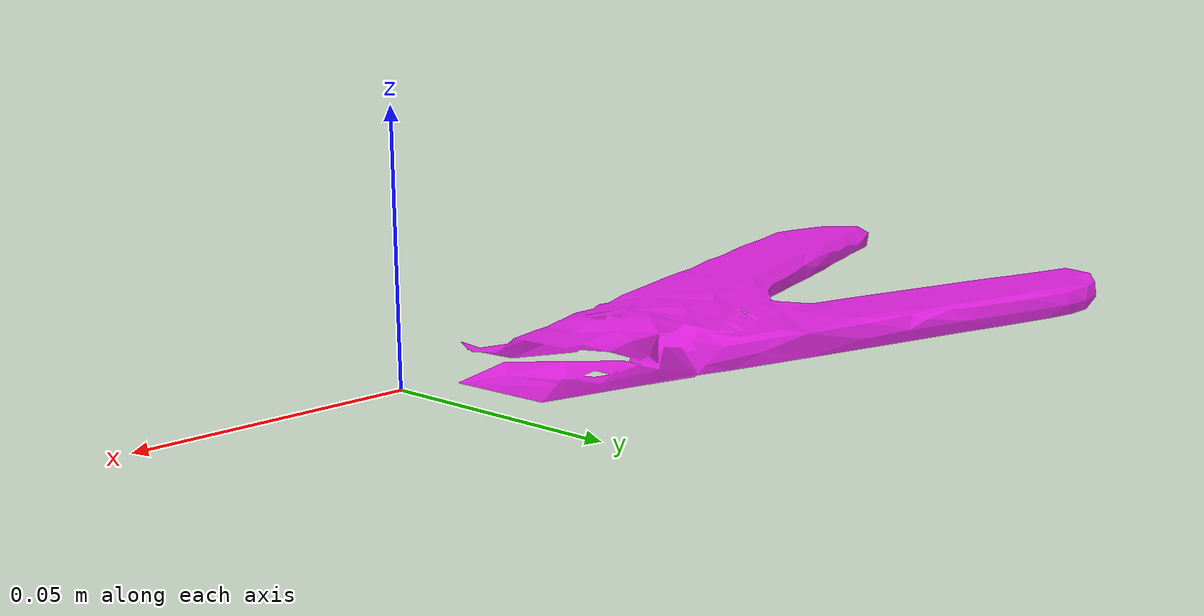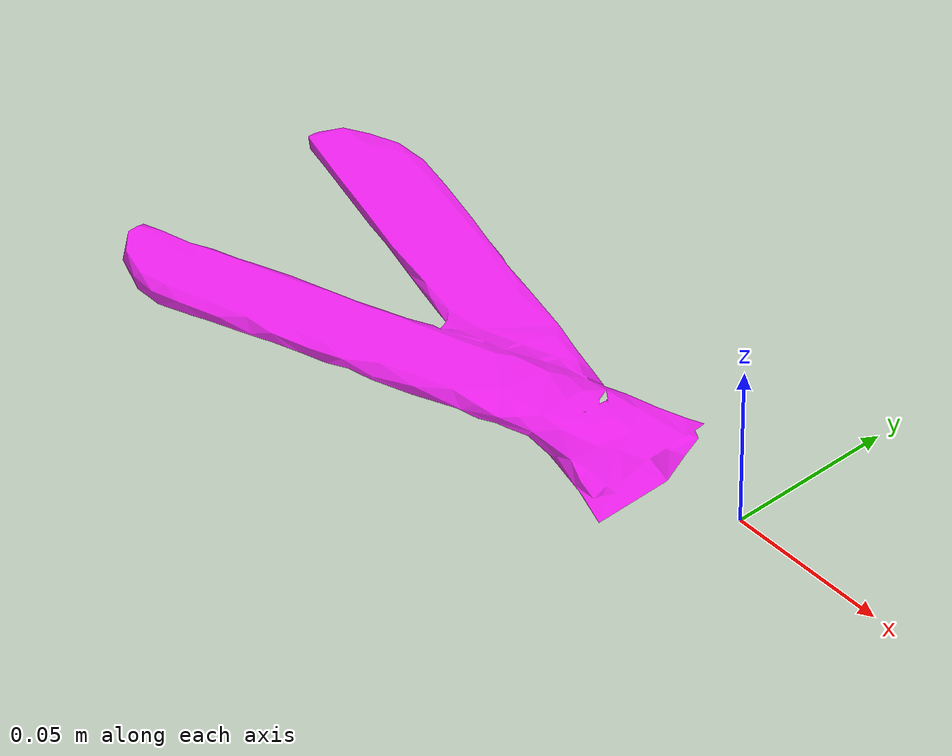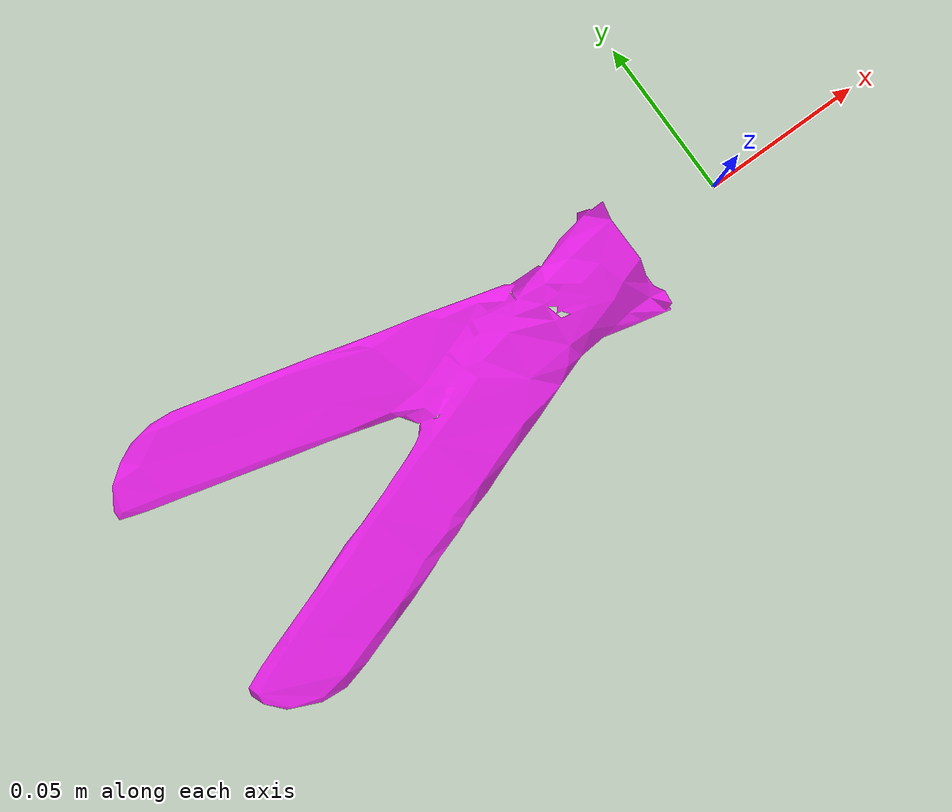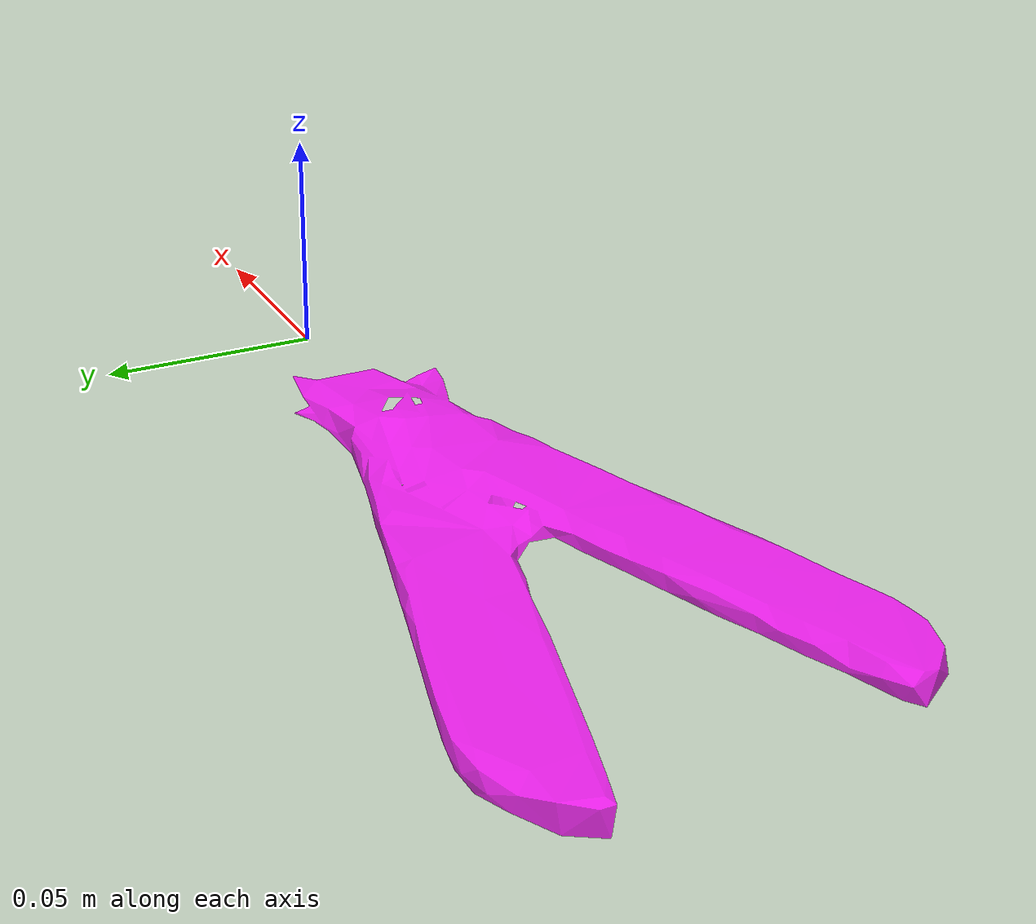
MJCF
<mujoco model="bottom_watertight_tiny">
  <default>
    <default group="2" type="mesh" contype="0" conaffinity="0">
      <geom group="2" type="mesh" contype="0" conaffinity="0"/>
    </default>
    <default group="3" type="mesh">
      <geom group="3" type="mesh"/>
    </default>
  </default>
  <asset>
    <mesh file="bottom_watertight_tiny.obj"/>
    <mesh file="bottom_watertight_tiny_collision_0.obj"/>
    <mesh file="bottom_watertight_tiny_collision_1.obj"/>
    <mesh file="bottom_watertight_tiny_collision_2.obj"/>
    <mesh file="bottom_watertight_tiny_collision_3.obj"/>
    <mesh file="bottom_watertight_tiny_collision_4.obj"/>
    <mesh file="bottom_watertight_tiny_collision_5.obj"/>
    <mesh file="bottom_watertight_tiny_collision_6.obj"/>
    <mesh file="bottom_watertight_tiny_collision_7.obj"/>
    <mesh file="bottom_watertight_tiny_collision_8.obj"/>
    <mesh file="bottom_watertight_tiny_collision_9.obj"/>
    <mesh file="bottom_watertight_tiny_collision_10.obj"/>
    <mesh file="bottom_watertight_tiny_collision_11.obj"/>
    <mesh file="bottom_watertight_tiny_collision_12.obj"/>
    <mesh file="bottom_watertight_tiny_collision_13.obj"/>
    <mesh file="bottom_watertight_tiny_collision_14.obj"/>
  </asset>
  <worldbody>
    <body name="bottom_watertight_tiny">
      <freejoint/>
      <geom mesh="bottom_watertight_tiny" group="2" type="mesh" rgba="1 0 1 0.8" contype="0" conaffinity="0"/>
      <geom mesh="bottom_watertight_tiny_collision_0" rgba="0.5272290096863181 0.49594848526288005 0.9428245246786853 1" group="3" type="mesh"/>
      <geom mesh="bottom_watertight_tiny_collision_1" rgba="0.30865744844416676 0.8914641683494989 0.914047764849407 1" group="3" type="mesh"/>
      <geom mesh="bottom_watertight_tiny_collision_2" rgba="0.14732138102712922 0.6474224101818601 0.13386764938532236 1" group="3" type="mesh"/>
      <geom mesh="bottom_watertight_tiny_collision_3" rgba="0.6592470733483282 0.16629687952200067 0.5690621131834793 1" group="3" type="mesh"/>
      <geom mesh="bottom_watertight_tiny_collision_4" rgba="0.14480078446289557 0.8995111724770833 0.9431585223219869 1" group="3" type="mesh"/>
      <geom mesh="bottom_watertight_tiny_collision_5" rgba="0.5878952822229575 0.3557181963138979 0.1259542522784528 1" group="3" type="mesh"/>
      <geom mesh="bottom_watertight_tiny_collision_6" rgba="0.8498374278851542 0.2661548872660595 0.7546920221979878 1" group="3" type="mesh"/>
      <geom mesh="bottom_watertight_tiny_collision_7" rgba="0.8979028825431346 0.17918422115483412 0.5641609217662489 1" group="3" type="mesh"/>
      <geom mesh="bottom_watertight_tiny_collision_8" rgba="0.44153167081844424 0.087619962802711 0.5402610693645598 1" group="3" type="mesh"/>
      <geom mesh="bottom_watertight_tiny_collision_9" rgba="0.20291328224725513 0.2112314162490182 0.6948945373852735 1" group="3" type="mesh"/>
      <geom mesh="bottom_watertight_tiny_collision_10" rgba="0.5823920338291118 0.13200057629655715 0.059853627927714426 1" group="3" type="mesh"/>
      <geom mesh="bottom_watertight_tiny_collision_11" rgba="0.019924991814070148 0.13531161643418876 0.2788826443085729 1" group="3" type="mesh"/>
      <geom mesh="bottom_watertight_tiny_collision_12" rgba="0.2989854446943605 0.5854789035181921 0.3566891030124736 1" group="3" type="mesh"/>
      <geom mesh="bottom_watertight_tiny_collision_13" rgba="0.3167935985341417 0.5483624229889902 0.032487994833020784 1" group="3" type="mesh"/>
      <geom mesh="bottom_watertight_tiny_collision_14" rgba="0.05602429076213589 0.3546970716252119 0.7455089636771887 1" group="3" type="mesh"/>
    </body>
  </worldbody>
</mujoco>
